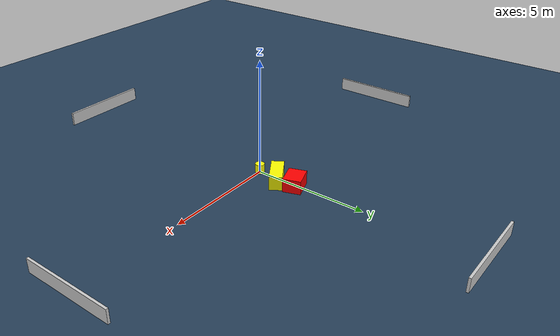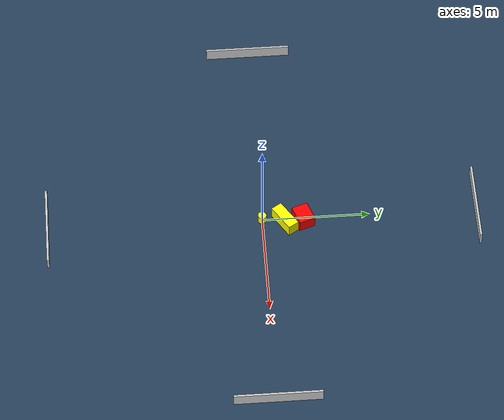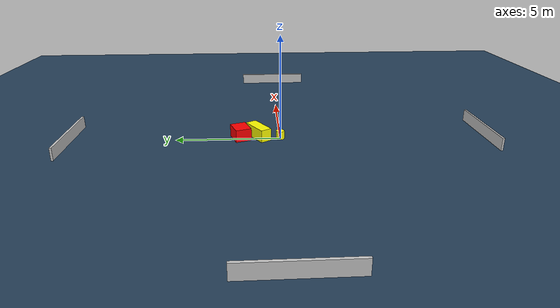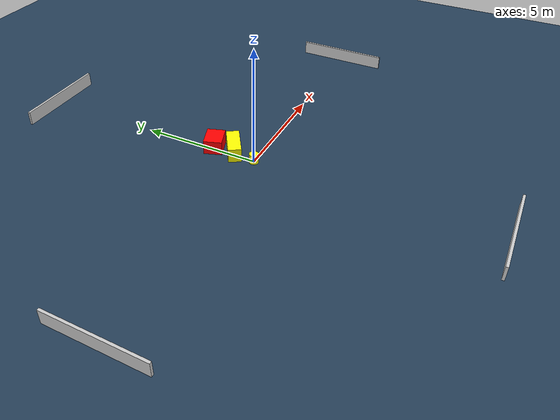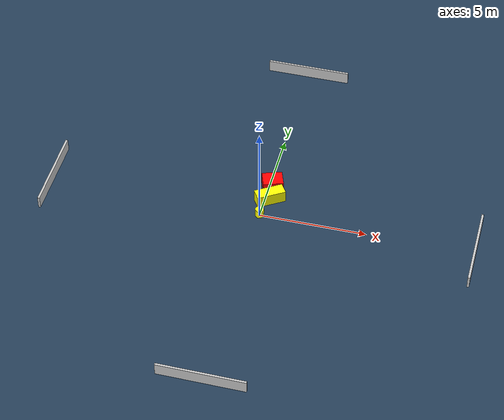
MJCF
<?xml version="1.0" ?>
<mujoco model="generated_environment">
  <option timestep="0.01" integrator="RK4" cone="elliptic"/>
  <default>
    <geom density="1"/>
  </default>
  <asset>
    <texture builtin="gradient" height="3072" name="skybox" rgb1="0.3 0.5 0.7" rgb2="0 0 0" type="skybox" width="512"/>
    <texture builtin="checker" height="300" name="groundplane" rgb1="0.2 0.3 0.4" rgb2="0.1 0.2 0.3" type="2d" width="300"/>
    <material name="groundplane" reflectance="0.2" texrepeat="5 5" texture="groundplane"/>
  </asset>
  <worldbody>
    <light dir="0 0 -1" directional="true" pos="0 0 1.5"/>
    <geom condim="3" friction="0.5 0.005 0.001" material="groundplane" name="floor" pos="0 0 0" size="0 0 0.05" type="plane"/>
    <body name="walls">
      <geom name="wall_1" condim="4" pos="-10.0 0.0 0.3" rgba="0.800000011920929 0.800000011920929 0.800000011920929 1.0" size="0.05 2.0 0.3" type="box"/>
      <geom name="wall_2" condim="4" pos="10.0 0.0 0.3" rgba="0.800000011920929 0.800000011920929 0.800000011920929 1.0" size="0.05 2.0 0.3" type="box"/>
      <geom name="wall_3" condim="4" pos="0.0 -10.0 0.3" rgba="0.800000011920929 0.800000011920929 0.800000011920929 1.0" size="2.0 0.05 0.3" type="box"/>
      <geom name="wall_4" condim="4" pos="0.0 10.0 0.3" rgba="0.800000011920929 0.800000011920929 0.800000011920929 1.0" size="2.0 0.05 0.3" type="box"/>
    </body>
    <body name="robot">
      <joint name="joint_x" type="slide" pos="0 0 0" axis="1 0 0"/>
      <joint name="joint_y" type="slide" pos="0 0 0" axis="0 1 0"/>
      <geom name="robot" type="cylinder" pos="0.0 0.0 0.2" size="0.2 0.2 0.0" mass="5.0" friction="1.0 0.005 0.0001" condim="4" rgba="1.0 1.0 0.0 1.0"/>
    </body>
    <body name="obstacle_1_movable">
      <geom name="obstacle_1_movable" condim="4" pos="0.2239340871126655 1.047144232690217 0.3" euler="0 0 212.3007154804733" friction="0.0 0.005 0.001" rgba="1.0 1.0 0.0 1.0" size="0.6817350352975904 0.2734072519095859 0.3" type="box" mass="0.1"/>
      <joint type="free"/>
    </body>
    <body name="obstacle_2_static">
      <geom name="obstacle_2_static" condim="4" pos="0.14775340287019403 1.9062082545577514 0.3" euler="0 0 109.27902290446033" friction="0.0 0.005 0.001" rgba="1.0 0.0 0.0 1.0" size="0.3826280492031193 0.47424629054090006 0.3" type="box"/>
    </body>
  </worldbody>
  <actuator>
    <motor name="actuator_x" joint="joint_x" gear="1" ctrlrange="-1 1"/>
    <motor name="actuator_y" joint="joint_y" gear="1" ctrlrange="-1 1"/>
  </actuator>
</mujoco>
